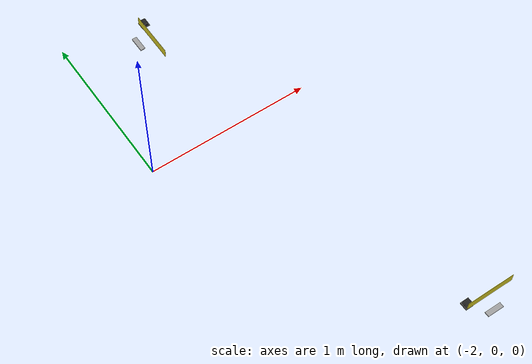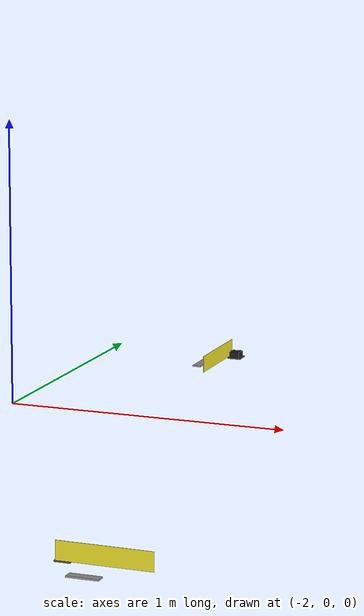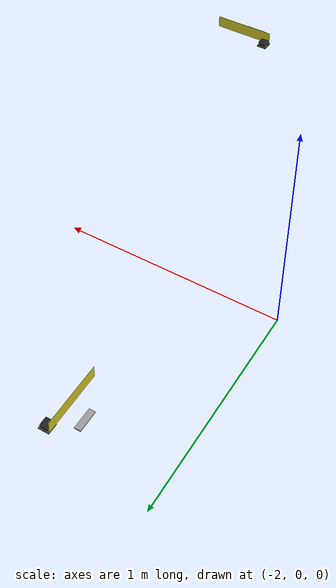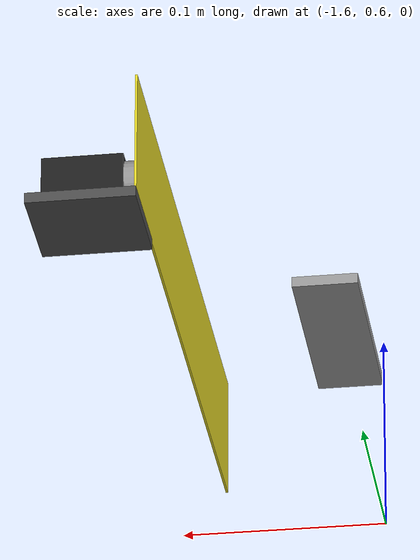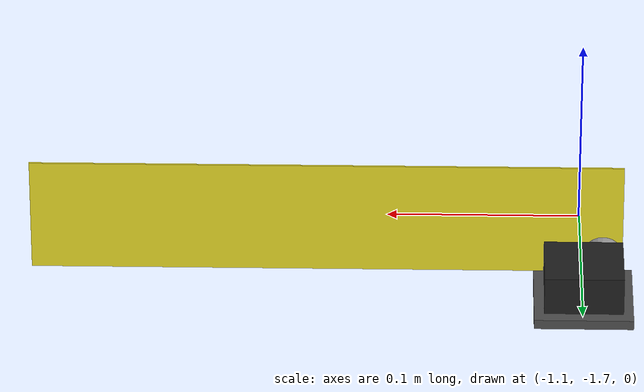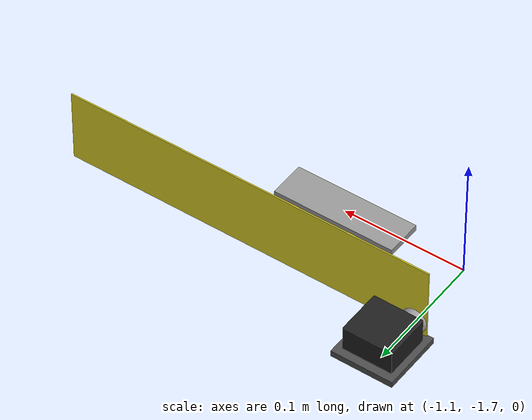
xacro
<?xml version="1.0" ?>
<robot name="barrier" xmlns:xacro="http://ros.org/wiki/xacro">

  <link name="world"/>

<!-- barrier 1 -->
  <joint name="base_joint_1" type="fixed">
    <parent link="world"/>
    <child link="base_link_1"/>
    <origin xyz="-1.5 0.9 0.01" rpy="0 0 1.57"/>
  </joint>

  <link name="base_link_1">
    <visual>
      <geometry>
        <box size="0.05 0.05 0.005"/>
      </geometry>
    </visual>

    <collision>
      <origin xyz="0 0 0" rpy="0 0 0"/>
      <geometry>
        <box size="0.05 0.05 0.005"/>
      </geometry>
    </collision>

    <inertial>
      <origin xyz="0 0 0" rpy="0 0 0"/>
      <mass value="0.1"/>
      <inertia  ixx="0.0001" ixy="0" ixz="0"
                iyy="0.0001" iyz="0"
                izz="0.0001" />
    </inertial>
  </link>

  <link name="motor_1">
    <inertial>
      <mass value="0.1"/>
      <origin xyz="0 0 0" rpy="0 0 0"/>
      <inertia  ixx="0.01" ixy="0" ixz="0"
                iyy="0.01" iyz="0"
                izz="0.01" />
    </inertial>
    <collision>
      <origin xyz="0 0 0" rpy="0 0 0"/>
      <geometry>
        <box size="0.04 0.037 0.02"/>
      </geometry>
    </collision>
    <visual>
      <geometry>
        <box size="0.04 0.037 0.02"/>
      </geometry>
    </visual>
  </link>

  <joint name="base_to_motor_1" type="fixed">
    <parent link="base_link_1"/>
    <child link="motor_1"/>
    <origin xyz="0 0 0.0125" rpy="0 0 0"/>
  </joint>

  <link name="gear_1">
    <inertial>
      <mass value="0.1"/>
      <origin xyz="0 0 0" rpy="0 0 0"/>
      <inertia ixx="0.01" ixy="0" ixz="0"
              iyy="0.01" iyz="0"
              izz="0.01" />
    </inertial>
    <collision>
      <origin xyz="0.01 0.021 0" rpy="-1.57 3.14 0"/>
      <geometry>
        <cylinder radius="0.01" length="0.005"/>
      </geometry>
    </collision>
    <visual>
        <geometry>
            <cylinder radius="0.01" length="0.005"/>
        </geometry>
    </visual>
  </link>

  <joint name="motor_to_gear_1" type="fixed">
      <parent link="motor_1"/>
      <child link="gear_1"/>
      <origin xyz="0.01 0.021 0" rpy="-1.57 3.14 0"/>
  </joint>

  <link name="barrier_1">
    <inertial>
      <mass value="0.01"/>
      <origin xyz="0 0 0" rpy="0 0 0"/>
      <inertia ixx="0.01" ixy="0" ixz="0"
              iyy="0.01" iyz="0"
              izz="0.01" />
    </inertial>
    <collision>
      <origin xyz="0.14 0.02 0.0005" rpy="0 0 0"/>
      <geometry>
        <box size="0.3 0.06 0.001"/>
      </geometry>
    </collision>
    <visual>
      <origin xyz="0.14 0.02 0.0005" rpy="0 0 0"/>
      <geometry>
        <box size="0.3 0.06 0.001"/>
      </geometry>
    </visual>
  </link>

  <joint name="gear_to_barrier_1" type="revolute">
      <limit upper="1.57" lower="0" velocity="100" effort="100"/>
      <origin xyz="0 0 0.0025 " rpy="0 0 0"/>
      <axis xyz="0 0 1"/>
      <parent link="gear_1"/>
      <child link="barrier_1"/>
      <dynamics damping="0.1" friction="0.1"/>
  </joint>

  <gazebo>
    <plugin name="gazebo_ros_control" filename="libgazebo_ros_control.so">
      <robotNamespace>/barrier_1</robotNamespace>
    </plugin>
  </gazebo>

  <transmission name="gear_to_barrier_1_trans">
    <type>transmission_interface/SimpleTransmission</type>
    <actuator name="motor1">
      <mechanicalReduction>1</mechanicalReduction>
    </actuator>
    <joint name="gear_to_barrier_1">
      <hardwareInterface>hardware_interface/EffortJointInterface</hardwareInterface>
    </joint>
  </transmission>

  <gazebo reference="base_link_1">
    <material>Gazebo/DarkGrey</material>
  </gazebo>

  <gazebo reference="motor_1">
    <material>Gazebo/Black</material>
  </gazebo>

  <gazebo reference="gear_1">
    <material>Gazebo/Grey</material>
  </gazebo>

  <gazebo reference="barrier_1">
    <material>Gazebo/Yellow</material>
  </gazebo>
<!-- barrier 2 -->
  <joint name="base_joint_2" type="fixed">
    <parent link="world"/>
    <child link="base_link_2"/>
    <origin xyz="-1.1 -1.6 0.01" rpy="0 0 3.14"/>
  </joint>

  <link name="base_link_2">
    <visual>
      <geometry>
        <box size="0.05 0.05 0.005"/>
      </geometry>
    </visual>

    <collision>
      <origin xyz="0 0 0" rpy="0 0 0"/>
      <geometry>
        <box size="0.05 0.05 0.005"/>
      </geometry>
    </collision>

    <inertial>
      <origin xyz="0 0 0" rpy="0 0 0"/>
      <mass value="0.1"/>
      <inertia  ixx="0.0001" ixy="0" ixz="0"
                iyy="0.0001" iyz="0"
                izz="0.0001" />
    </inertial>
  </link>

  <link name="motor_2">
    <inertial>
      <mass value="0.1"/>
      <origin xyz="0 0 0" rpy="0 0 0"/>
      <inertia  ixx="0.01" ixy="0" ixz="0"
                iyy="0.01" iyz="0"
                izz="0.01" />
    </inertial>
    <collision>
      <origin xyz="0 0 0" rpy="0 0 0"/>
      <geometry>
        <box size="0.04 0.037 0.02"/>
      </geometry>
    </collision>
    <visual>
      <geometry>
        <box size="0.04 0.037 0.02"/>
      </geometry>
    </visual>
  </link>

  <joint name="base_to_motor_2" type="fixed">
    <parent link="base_link_2"/>
    <child link="motor_2"/>
    <origin xyz="0 0 0.0125" rpy="0 0 0"/>
  </joint>

  <link name="gear_2">
    <inertial>
      <mass value="0.1"/>
      <origin xyz="0 0 0" rpy="0 0 0"/>
      <inertia ixx="0.01" ixy="0" ixz="0"
              iyy="0.01" iyz="0"
              izz="0.01" />
    </inertial>
    <collision>
      <origin xyz="0.01 0.021 0" rpy="-1.57 3.14 0"/>
      <geometry>
        <cylinder radius="0.01" length="0.005"/>
      </geometry>
    </collision>
    <visual>
        <geometry>
            <cylinder radius="0.01" length="0.005"/>
        </geometry>
    </visual>
  </link>

  <joint name="motor_to_gear_2" type="fixed">
      <parent link="motor_2"/>
      <child link="gear_2"/>
      <origin xyz="0.01 0.021 0" rpy="-1.57 3.14 0"/>
  </joint>

  <link name="barrier_2">
    <inertial>
      <mass value="0.01"/>
      <origin xyz="0 0 0" rpy="0 0 0"/>
      <inertia ixx="0.01" ixy="0" ixz="0"
              iyy="0.01" iyz="0"
              izz="0.01" />
    </inertial>
    <collision>
      <origin xyz="0.14 0.02 0.0005" rpy="0 0 0"/>
      <geometry>
        <box size="0.3 0.06 0.001"/>
      </geometry>
    </collision>
    <visual>
      <origin xyz="0.14 0.02 0.0005" rpy="0 0 0"/>
      <geometry>
        <box size="0.3 0.06 0.001"/>
      </geometry>
    </visual>
  </link>

  <joint name="gear_to_barrier_2" type="revolute">
      <limit upper="1.57" lower="0" velocity="100" effort="100"/>
      <origin xyz="0 0 0.0025 " rpy="0 0 0"/>
      <axis xyz="0 0 1"/>
      <parent link="gear_2"/>
      <child link="barrier_2"/>
      <dynamics damping="0.1" friction="0.1"/>
  </joint>

  <gazebo>
    <plugin name="gazebo_ros_control" filename="libgazebo_ros_control.so">
      <robotNamespace>/barrier_2</robotNamespace>
    </plugin>
  </gazebo>

  <transmission name="gear_to_barrier_2_trans">
    <type>transmission_interface/SimpleTransmission</type>
    <actuator name="motor1">
      <mechanicalReduction>1</mechanicalReduction>
    </actuator>
    <joint name="gear_to_barrier_2">
      <hardwareInterface>hardware_interface/EffortJointInterface</hardwareInterface>
    </joint>
  </transmission>

  <gazebo reference="base_link_2">
    <material>Gazebo/DarkGrey</material>
  </gazebo>

  <gazebo reference="motor_2">
    <material>Gazebo/Black</material>
  </gazebo>

  <gazebo reference="gear_2">
    <material>Gazebo/Grey</material>
  </gazebo>

  <gazebo reference="barrier_2">
    <material>Gazebo/Yellow</material>
  </gazebo>

<!-- traffic light 1 -->
  <joint name="base_joint_1_tl" type="fixed">
      <parent link="world"/>
      <child link="base_link_1_tl"/>
      <origin xyz="-1.6 0.8 0.0001" rpy="0 0 1.57"/>
  </joint>

  <link name="base_link_1_tl">
      <visual>
          <geometry>
              <box size="0.1 0.03 0.005"/>
          </geometry>
      </visual>

      <collision>
          <origin xyz="0 0 0.001" rpy="0 0 0"/>
          <geometry>
              <box size="0.09 0.029 0.0049"/>
          </geometry>
      </collision>

      <inertial>
          <origin xyz="0 0 0" rpy="0 0 0"/>
          <mass value="0.1"/>
          <inertia ixx="0.0001" ixy="0" ixz="0"
                    iyy="0.0001" iyz="0"
                    izz="0.0001" />
      </inertial>
  </link>
  <gazebo reference="base_link_1_tl">
      <material> Gazebo/Gray </material>
  </gazebo>

  <link name="light_red_1">
      <visual>
          <geometry>
              <cylinder length="0.003" radius="0.009"/>
          </geometry>
      </visual>
      <inertial>
          <origin xyz="0 0 0" rpy="0 0 0"/>
          <mass value="0.01"/>
          <inertia ixx="0.0001" ixy="0" ixz="0"
                  iyy="0.0001" iyz="0"
                  izz="0.0001" />
      </inertial>
      <gravity>0</gravity>
  </link>
  <joint name="base_to_light_red_1" type="prismatic">
      <parent link="base_link_1_tl"/>
      <child link="light_red_1"/>
      <origin xyz="-0.0333 0.0 0.0" rpy="0 0 0"/>
      <axis xyz="0 0 1"/>
      <limit lower="0.0" upper="0.002" effort="1000.0" velocity="1000.0"/>
      <dynamics damping="0.0" friction="0.1"/>
  </joint>

  <link name="light_yellow_1">
      <visual>
          <geometry>
              <cylinder length="0.003" radius="0.009"/>
          </geometry>
      </visual>
      <inertial>
          <origin xyz="0 0 0" rpy="0 0 0"/>
          <mass value="0.01"/>
          <inertia ixx="0.0001" ixy="0" ixz="0"
                  iyy="0.0001" iyz="0"
                  izz="0.0001" />
      </inertial>
      <gravity>0</gravity>
  </link>
  <joint name="base_to_light_yellow_1" type="prismatic">
      <parent link="base_link_1_tl"/>
      <child link="light_yellow_1"/>
      <origin xyz="0.0 0.0 0.0" rpy="0 0 0"/>
      <axis xyz="0 0 1"/>
      <limit lower="0.0" upper="0.002" effort="1000.0" velocity="1000.0"/>
      <dynamics damping="0.0" friction="0.1"/>
  </joint>

  <link name="light_green_1">
      <visual>
          <geometry>
              <cylinder length="0.003" radius="0.009"/>
          </geometry>
      </visual>
      <inertial>
          <origin xyz="0 0 0" rpy="0 0 0"/>
          <mass value="0.01"/>
          <inertia ixx="0.0001" ixy="0" ixz="0"
                  iyy="0.0001" iyz="0"
                  izz="0.0001" />
      </inertial>
      <gravity>0</gravity>
  </link>
  <joint name="base_to_light_green_1" type="prismatic">
      <parent link="base_link_1_tl"/>
      <child link="light_green_1"/>
      <origin xyz="0.0333 0.0 0.0" rpy="0 0 0"/>
      <axis xyz="0 0 1"/>
      <limit lower="0.0" upper="0.002" effort="1000.0" velocity="1000.0"/>
      <dynamics damping="0.0" friction="0.1"/>
  </joint>

  <gazebo reference="light_red_1">
      <material> Gazebo/Red </material>
  </gazebo>
  <gazebo reference="light_yellow_1">
      <material> Gazebo/Yellow </material>
  </gazebo>
  <gazebo reference="light_green_1">
      <material> Gazebo/Green </material>
  </gazebo>

  <gazebo>
      <plugin name="gazebo_ros_control" filename="libgazebo_ros_control.so">
          <robotNamespace>/traffic_lights_1</robotNamespace>
      </plugin>
  </gazebo>

  <transmission name="base_to_light_1_green_trans">
      <type>transmission_interface/SimpleTransmission</type>
      <actuator name="motor1">
          <mechanicalReduction>1</mechanicalReduction>
      </actuator>
      <joint name="base_to_light_green_1">
          <hardwareInterface>hardware_interface/EffortJointInterface</hardwareInterface>
      </joint>
  </transmission>

  <transmission name="base_to_light_1_yellow_trans">
      <type>transmission_interface/SimpleTransmission</type>
      <actuator name="motor1">
          <mechanicalReduction>1</mechanicalReduction>
      </actuator>
      <joint name="base_to_light_yellow_1">
          <hardwareInterface>hardware_interface/EffortJointInterface</hardwareInterface>
      </joint>
  </transmission>

  <transmission name="base_to_light_1_red_trans">
      <type>transmission_interface/SimpleTransmission</type>
      <actuator name="motor1">
          <mechanicalReduction>1</mechanicalReduction>
      </actuator>
      <joint name="base_to_light_red_1">
          <hardwareInterface>hardware_interface/EffortJointInterface</hardwareInterface>
      </joint>
  </transmission>

<!-- traffic light 2 -->
  <joint name="base_joint_2_tl" type="fixed">
      <parent link="world"/>
      <child link="base_link_2_tl"/>
      <origin xyz="-1 -1.7 0.0001" rpy="0 0 0"/>
  </joint>

  <link name="base_link_2_tl">
      <visual>
          <geometry>
              <box size="0.1 0.03 0.005"/>
          </geometry>
      </visual>

      <collision>
          <origin xyz="0 0 0.001" rpy="0 0 0"/>
          <geometry>
              <box size="0.09 0.029 0.0049"/>
          </geometry>
      </collision>

      <inertial>
          <origin xyz="0 0 0" rpy="0 0 0"/>
          <mass value="0.1"/>
          <inertia ixx="0.0001" ixy="0" ixz="0"
                    iyy="0.0001" iyz="0"
                    izz="0.0001" />
      </inertial>
  </link>
  <gazebo reference="base_link_2_tl">
      <material> Gazebo/Gray </material>
  </gazebo>

  <link name="light_red_2">
      <visual>
          <geometry>
              <cylinder length="0.003" radius="0.009"/>
          </geometry>
      </visual>
      <inertial>
          <origin xyz="0 0 0" rpy="0 0 0"/>
          <mass value="0.01"/>
          <inertia ixx="0.0001" ixy="0" ixz="0"
                  iyy="0.0001" iyz="0"
                  izz="0.0001" />
      </inertial>
      <gravity>0</gravity>
  </link>
  <joint name="base_to_light_red_2" type="prismatic">
      <parent link="base_link_2_tl"/>
      <child link="light_red_2"/>
      <origin xyz="-0.0333 0.0 0.0" rpy="0 0 0"/>
      <axis xyz="0 0 1"/>
      <limit lower="0.0" upper="0.002" effort="1000.0" velocity="1000.0"/>
      <dynamics damping="0.0" friction="0.1"/>
  </joint>

  <link name="light_yellow_2">
      <visual>
          <geometry>
              <cylinder length="0.003" radius="0.009"/>
          </geometry>
      </visual>
      <inertial>
          <origin xyz="0 0 0" rpy="0 0 0"/>
          <mass value="0.01"/>
          <inertia ixx="0.0001" ixy="0" ixz="0"
                  iyy="0.0001" iyz="0"
                  izz="0.0001" />
      </inertial>
      <gravity>0</gravity>
  </link>
  <joint name="base_to_light_yellow_2" type="prismatic">
      <parent link="base_link_2_tl"/>
      <child link="light_yellow_2"/>
      <origin xyz="0.0 0.0 0.0" rpy="0 0 0"/>
      <axis xyz="0 0 1"/>
      <limit lower="0.0" upper="0.002" effort="1000.0" velocity="1000.0"/>
      <dynamics damping="0.0" friction="0.1"/>
  </joint>

  <link name="light_green_2">
      <visual>
          <geometry>
              <cylinder length="0.003" radius="0.009"/>
          </geometry>
      </visual>
      <inertial>
          <origin xyz="0 0 0" rpy="0 0 0"/>
          <mass value="0.01"/>
          <inertia ixx="0.0001" ixy="0" ixz="0"
                  iyy="0.0001" iyz="0"
                  izz="0.0001" />
      </inertial>
      <gravity>0</gravity>
  </link>
  <joint name="base_to_light_green_2" type="prismatic">
      <parent link="base_link_2_tl"/>
      <child link="light_green_2"/>
      <origin xyz="0.0333 0.0 0.0" rpy="0 0 0"/>
      <axis xyz="0 0 1"/>
      <limit lower="0.0" upper="0.002" effort="1000.0" velocity="1000.0"/>
      <dynamics damping="0.0" friction="0.1"/>
  </joint>

  <gazebo reference="light_red_2">
      <material> Gazebo/Red </material>
  </gazebo>
  <gazebo reference="light_yellow_2">
      <material> Gazebo/Yellow </material>
  </gazebo>
  <gazebo reference="light_green_2">
      <material> Gazebo/Green </material>
  </gazebo>

  <gazebo>
      <plugin name="gazebo_ros_control" filename="libgazebo_ros_control.so">
          <robotNamespace>/traffic_lights_2</robotNamespace>
      </plugin>
  </gazebo>

  <transmission name="light_2_trans">
      <type>transmission_interface/SimpleTransmission</type>
      <actuator name="motor1">
          <mechanicalReduction>1</mechanicalReduction>
      </actuator>
      <joint name="base_to_light_green_2">
          <hardwareInterface>hardware_interface/EffortJointInterface</hardwareInterface>
      </joint>
  </transmission>

  <transmission name="base_to_light_2_yellow_trans">
      <type>transmission_interface/SimpleTransmission</type>
      <actuator name="motor1">
          <mechanicalReduction>1</mechanicalReduction>
      </actuator>
      <joint name="base_to_light_yellow_2">
          <hardwareInterface>hardware_interface/EffortJointInterface</hardwareInterface>
      </joint>
  </transmission>

  <transmission name="base_to_light_2_red_trans">
      <type>transmission_interface/SimpleTransmission</type>
      <actuator name="motor1">
          <mechanicalReduction>1</mechanicalReduction>
      </actuator>
      <joint name="base_to_light_red_2">
          <hardwareInterface>hardware_interface/EffortJointInterface</hardwareInterface>
      </joint>
  </transmission>

</robot>
